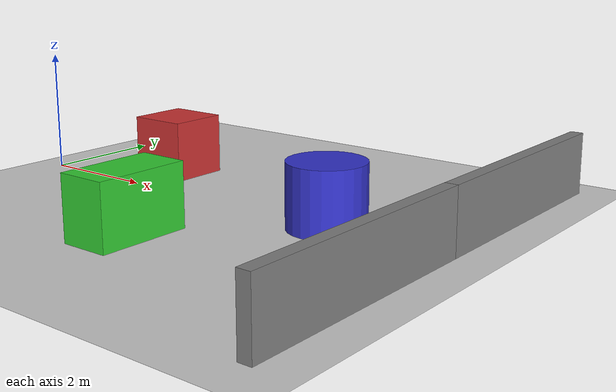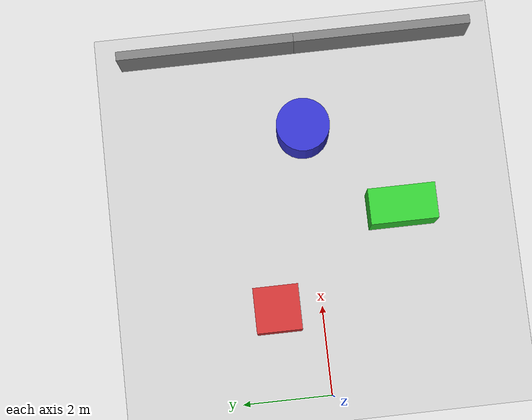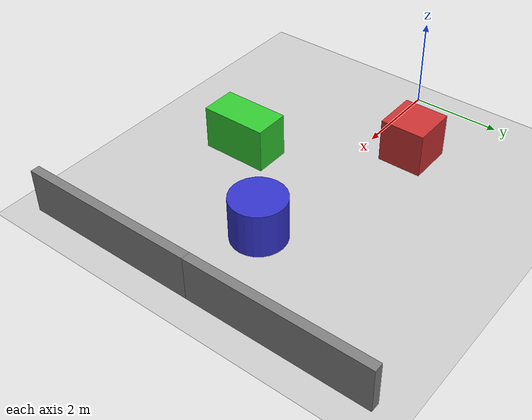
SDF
<?xml version="1.0" ?>
<sdf version="1.4">
  <world name="psdf_test_world">

    <!-- Ground plane -->
    <include>
      <uri>model://ground_plane</uri>
    </include>

    <!-- Sun -->
    <include>
      <uri>model://sun</uri>
    </include>

    <!-- Simple obstacles for PSDF testing -->

    <!-- Box obstacle 1 -->
    <model name="box_obstacle_1">
      <pose>2 1 0.5 0 0 0</pose>
      <static>true</static>
      <link name="link">
        <collision name="collision">
          <geometry>
            <box>
              <size>1 1 1</size>
            </box>
          </geometry>
        </collision>
        <visual name="visual">
          <geometry>
            <box>
              <size>1 1 1</size>
            </box>
          </geometry>
          <material>
            <ambient>0.8 0.2 0.2 1</ambient>
            <diffuse>0.8 0.2 0.2 1</diffuse>
          </material>
        </visual>
      </link>
    </model>

    <!-- Box obstacle 2 -->
    <model name="box_obstacle_2">
      <pose>4 -2 0.5 0 0 0</pose>
      <static>true</static>
      <link name="link">
        <collision name="collision">
          <geometry>
            <box>
              <size>0.8 1.5 1</size>
            </box>
          </geometry>
        </collision>
        <visual name="visual">
          <geometry>
            <box>
              <size>0.8 1.5 1</size>
            </box>
          </geometry>
          <material>
            <ambient>0.2 0.8 0.2 1</ambient>
            <diffuse>0.2 0.8 0.2 1</diffuse>
          </material>
        </visual>
      </link>
    </model>

    <!-- Cylinder obstacle -->
    <model name="cylinder_obstacle">
      <pose>6 0 0.5 0 0 0</pose>
      <static>true</static>
      <link name="link">
        <collision name="collision">
          <geometry>
            <cylinder>
              <radius>0.6</radius>
              <length>1</length>
            </cylinder>
          </geometry>
        </collision>
        <visual name="visual">
          <geometry>
            <cylinder>
              <radius>0.6</radius>
              <length>1</length>
            </cylinder>
          </geometry>
          <material>
            <ambient>0.2 0.2 0.8 1</ambient>
            <diffuse>0.2 0.2 0.8 1</diffuse>
          </material>
        </visual>
      </link>
    </model>

    <!-- Wall obstacle (corridor scenario) -->
    <model name="wall_1">
      <pose>8 2 0.5 0 0 0</pose>
      <static>true</static>
      <link name="link">
        <collision name="collision">
          <geometry>
            <box>
              <size>0.2 4 1</size>
            </box>
          </geometry>
        </collision>
        <visual name="visual">
          <geometry>
            <box>
              <size>0.2 4 1</size>
            </box>
          </geometry>
          <material>
            <ambient>0.5 0.5 0.5 1</ambient>
            <diffuse>0.5 0.5 0.5 1</diffuse>
          </material>
        </visual>
      </link>
    </model>

    <model name="wall_2">
      <pose>8 -2 0.5 0 0 0</pose>
      <static>true</static>
      <link name="link">
        <collision name="collision">
          <geometry>
            <box>
              <size>0.2 4 1</size>
            </box>
          </geometry>
        </collision>
        <visual name="visual">
          <geometry>
            <box>
              <size>0.2 4 1</size>
            </box>
          </geometry>
          <material>
            <ambient>0.5 0.5 0.5 1</ambient>
            <diffuse>0.5 0.5 0.5 1</diffuse>
          </material>
        </visual>
      </link>
    </model>

  </world>
</sdf>
